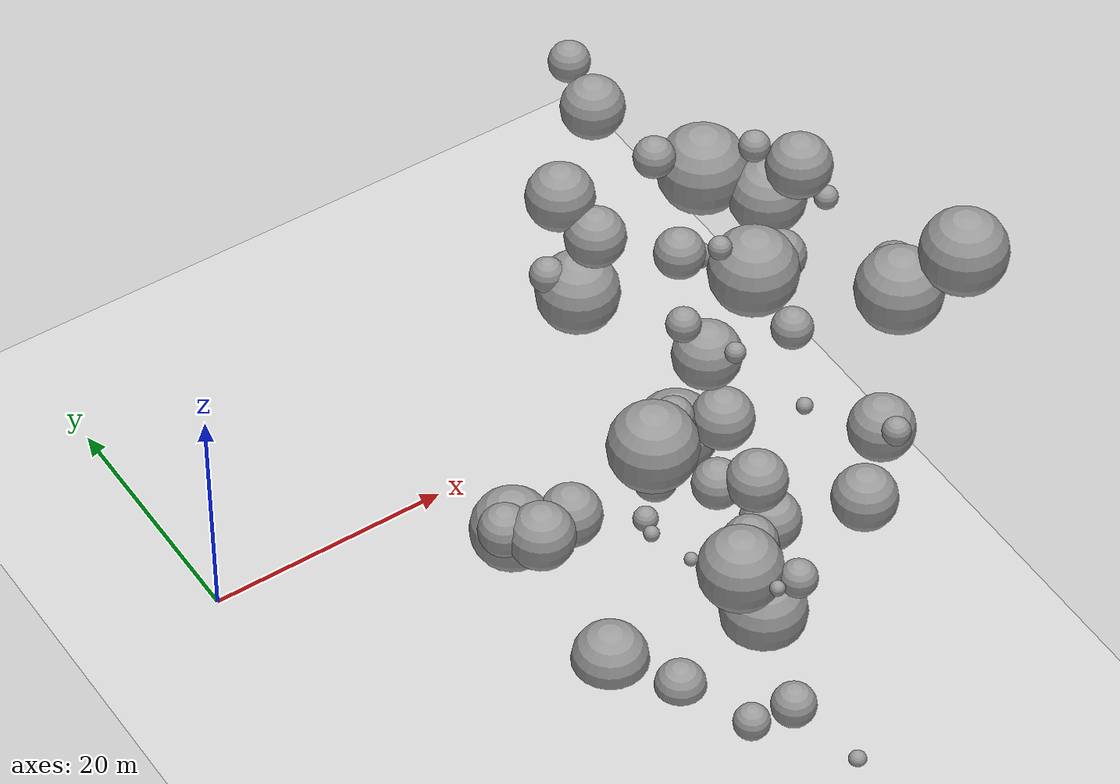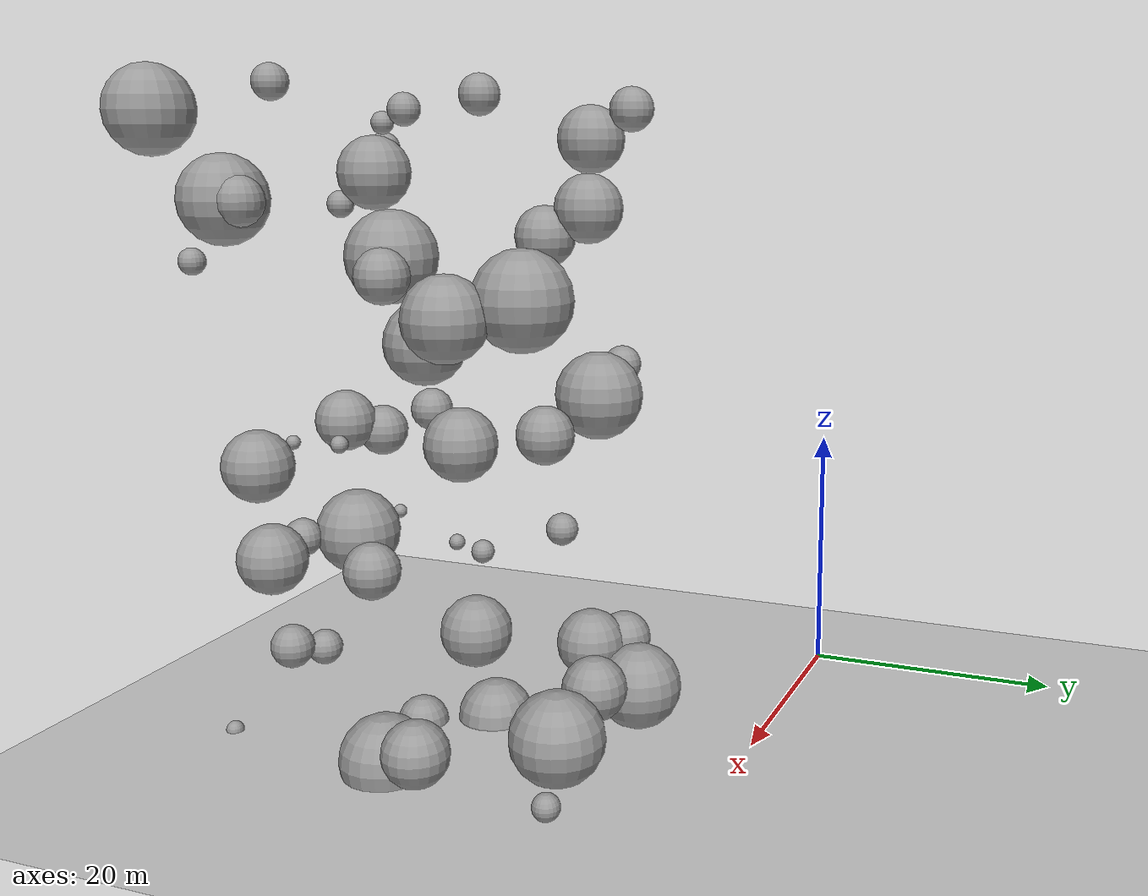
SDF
<sdf version="1.7">
 <world name="default">
  <model name="ground_plane">
   <static>1</static>
   <link name="link">
    <collision name="collision">
     <geometry><plane><normal>0 0 1</normal><size>100 100</size></plane></geometry>
     <surface>
      <contact><collide_bitmask>65535</collide_bitmask></contact>
      <friction><ode><mu>100</mu><mu2>50</mu2></ode></friction>
     </surface>
    </collision>
    <visual name="visual">
     <cast_shadows>0</cast_shadows>
     <geometry><plane><normal>0 0 1</normal><size>100 100</size></plane></geometry>
     <material>
      <script><uri>file://media/materials/scripts/gazebo.material</uri><name>Gazebo/Grey</name></script>
     </material>
    </visual>
   </link>
  </model>
  <model name="sphere_11">
   <static>1</static>
   <pose>39 -30 24 0 0 0</pose>
   <link name="link">
    <inertial>
     <mass>6761.3348610337325</mass>
     <inertia>
      <ixx>17273.81751408212</ixx>
      <iyy>17273.81751408212</iyy>
      <izz>17273.81751408212</izz>
      <ixy>0</ixy>
      <ixz>0</ixz>
      <iyz>0</iyz>
     </inertia>
    </inertial>
    <collision name="collision">
     <geometry><sphere><radius>2.5272484876502723</radius></sphere></geometry>
    </collision>
    <visual name="visual">
     <geometry><sphere><radius>2.5272484876502723</radius></sphere></geometry>
     <material>
      <script><uri>file://media/materials/scripts/gazebo.material</uri><name>Gazebo/Grey</name></script>
     </material>
    </visual>
   </link>
  </model>
  <model name="sphere_26">
   <static>1</static>
   <pose>32 -39 0 0 0 0</pose>
   <link name="link">
    <inertial>
     <mass>146.71801015854183</mass>
     <inertia>
      <ixx>29.161283317194567</ixx>
      <iyy>29.161283317194567</iyy>
      <izz>29.161283317194567</izz>
      <ixy>0</ixy>
      <ixz>0</ixz>
      <iyz>0</iyz>
     </inertia>
    </inertial>
    <collision name="collision">
     <geometry><sphere><radius>0.7049066478409625</radius></sphere></geometry>
    </collision>
    <visual name="visual">
     <geometry><sphere><radius>0.7049066478409625</radius></sphere></geometry>
     <material>
      <script><uri>file://media/materials/scripts/gazebo.material</uri><name>Gazebo/Grey</name></script>
     </material>
    </visual>
   </link>
  </model>
  <model name="sphere_31">
   <static>1</static>
   <pose>24 -28 17 0 0 0</pose>
   <link name="link">
    <inertial>
     <mass>61.999389655790715</mass>
     <inertia>
      <ixx>6.939261845150968</ixx>
      <iyy>6.939261845150968</iyy>
      <izz>6.939261845150968</izz>
      <ixy>0</ixy>
      <ixz>0</ixz>
      <iyz>0</iyz>
     </inertia>
    </inertial>
    <collision name="collision">
     <geometry><sphere><radius>0.5289723054267761</radius></sphere></geometry>
    </collision>
    <visual name="visual">
     <geometry><sphere><radius>0.5289723054267761</radius></sphere></geometry>
     <material>
      <script><uri>file://media/materials/scripts/gazebo.material</uri><name>Gazebo/Grey</name></script>
     </material>
    </visual>
   </link>
  </model>
  <model name="sphere_32">
   <static>1</static>
   <pose>26 -27 47 0 0 0</pose>
   <link name="link">
    <inertial>
     <mass>250.42265479350073</mass>
     <inertia>
      <ixx>71.08701484467682</ixx>
      <iyy>71.08701484467682</iyy>
      <izz>71.08701484467682</izz>
      <ixy>0</ixy>
      <ixz>0</ixz>
      <iyz>0</iyz>
     </inertia>
    </inertial>
    <collision name="collision">
     <geometry><sphere><radius>0.8424193528870205</radius></sphere></geometry>
    </collision>
    <visual name="visual">
     <geometry><sphere><radius>0.8424193528870205</radius></sphere></geometry>
     <material>
      <script><uri>file://media/materials/scripts/gazebo.material</uri><name>Gazebo/Grey</name></script>
     </material>
    </visual>
   </link>
  </model>
  <model name="sphere_34">
   <static>1</static>
   <pose>25 -11 5 0 0 0</pose>
   <link name="link">
    <inertial>
     <mass>6659.506574605881</mass>
     <inertia>
      <ixx>16842.41400105832</ixx>
      <iyy>16842.41400105832</iyy>
      <izz>16842.41400105832</izz>
      <ixy>0</ixy>
      <ixz>0</ixz>
      <iyz>0</iyz>
     </inertia>
    </inertial>
    <collision name="collision">
     <geometry><sphere><radius>2.5144971491569468</radius></sphere></geometry>
    </collision>
    <visual name="visual">
     <geometry><sphere><radius>2.5144971491569468</radius></sphere></geometry>
     <material>
      <script><uri>file://media/materials/scripts/gazebo.material</uri><name>Gazebo/Grey</name></script>
     </material>
    </visual>
   </link>
  </model>
  <model name="sphere_39">
   <static>1</static>
   <pose>31 -17 17 0 0 0</pose>
   <link name="link">
    <inertial>
     <mass>241.15153081747712</mass>
     <inertia>
      <ixx>66.75507533729944</ixx>
      <iyy>66.75507533729944</iyy>
      <izz>66.75507533729944</izz>
      <ixy>0</ixy>
      <ixz>0</ixz>
      <iyz>0</iyz>
     </inertia>
    </inertial>
    <collision name="collision">
     <geometry><sphere><radius>0.8318923641001357</radius></sphere></geometry>
    </collision>
    <visual name="visual">
     <geometry><sphere><radius>0.8318923641001357</radius></sphere></geometry>
     <material>
      <script><uri>file://media/materials/scripts/gazebo.material</uri><name>Gazebo/Grey</name></script>
     </material>
    </visual>
   </link>
  </model>
  <model name="sphere_55">
   <static>1</static>
   <pose>35 -26 25 0 0 0</pose>
   <link name="link">
    <inertial>
     <mass>108.83707617493017</mass>
     <inertia>
      <ixx>17.726746286466057</ixx>
      <iyy>17.726746286466057</iyy>
      <izz>17.726746286466057</izz>
      <ixy>0</ixy>
      <ixz>0</ixz>
      <iyz>0</iyz>
     </inertia>
    </inertial>
    <collision name="collision">
     <geometry><sphere><radius>0.6381107861235934</radius></sphere></geometry>
    </collision>
    <visual name="visual">
     <geometry><sphere><radius>0.6381107861235934</radius></sphere></geometry>
     <material>
      <script><uri>file://media/materials/scripts/gazebo.material</uri><name>Gazebo/Grey</name></script>
     </material>
    </visual>
   </link>
  </model>
  <model name="sphere_62">
   <static>1</static>
   <pose>27 -18 10 0 0 0</pose>
   <link name="link">
    <inertial>
     <mass>398.5527047433838</mass>
     <inertia>
      <ixx>154.22112011091602</ixx>
      <iyy>154.22112011091602</iyy>
      <izz>154.22112011091602</izz>
      <ixy>0</ixy>
      <ixz>0</ixz>
      <iyz>0</iyz>
     </inertia>
    </inertial>
    <collision name="collision">
     <geometry><sphere><radius>0.9835559058532748</radius></sphere></geometry>
    </collision>
    <visual name="visual">
     <geometry><sphere><radius>0.9835559058532748</radius></sphere></geometry>
     <material>
      <script><uri>file://media/materials/scripts/gazebo.material</uri><name>Gazebo/Grey</name></script>
     </material>
    </visual>
   </link>
  </model>
  <model name="sphere_84">
   <static>1</static>
   <pose>27 -7 48 0 0 0</pose>
   <link name="link">
    <inertial>
     <mass>1463.20033098981</mass>
     <inertia>
      <ixx>1347.4331763832636</ixx>
      <iyy>1347.4331763832636</iyy>
      <izz>1347.4331763832636</izz>
      <ixy>0</ixy>
      <ixz>0</ixz>
      <iyz>0</iyz>
     </inertia>
    </inertial>
    <collision name="collision">
     <geometry><sphere><radius>1.5173009409031737</radius></sphere></geometry>
    </collision>
    <visual name="visual">
     <geometry><sphere><radius>1.5173009409031737</radius></sphere></geometry>
     <material>
      <script><uri>file://media/materials/scripts/gazebo.material</uri><name>Gazebo/Grey</name></script>
     </material>
    </visual>
   </link>
  </model>
  <model name="sphere_90">
   <static>1</static>
   <pose>30 -27 14 0 0 0</pose>
   <link name="link">
    <inertial>
     <mass>4404.290433046008</mass>
     <inertia>
      <ixx>8455.270417579984</ixx>
      <iyy>8455.270417579984</iyy>
      <izz>8455.270417579984</izz>
      <ixy>0</ixy>
      <ixz>0</ixz>
      <iyz>0</iyz>
     </inertia>
    </inertial>
    <collision name="collision">
     <geometry><sphere><radius>2.1907649307975245</radius></sphere></geometry>
    </collision>
    <visual name="visual">
     <geometry><sphere><radius>2.1907649307975245</radius></sphere></geometry>
     <material>
      <script><uri>file://media/materials/scripts/gazebo.material</uri><name>Gazebo/Grey</name></script>
     </material>
    </visual>
   </link>
  </model>
  <model name="sphere_95">
   <static>1</static>
   <pose>24 -9 30 0 0 0</pose>
   <link name="link">
    <inertial>
     <mass>1047.7535553067346</mass>
     <inertia>
      <ixx>772.2646524986837</ixx>
      <iyy>772.2646524986837</iyy>
      <izz>772.2646524986837</izz>
      <ixy>0</ixy>
      <ixz>0</ixz>
      <iyz>0</iyz>
     </inertia>
    </inertial>
    <collision name="collision">
     <geometry><sphere><radius>1.3574489667920646</radius></sphere></geometry>
    </collision>
    <visual name="visual">
     <geometry><sphere><radius>1.3574489667920646</radius></sphere></geometry>
     <material>
      <script><uri>file://media/materials/scripts/gazebo.material</uri><name>Gazebo/Grey</name></script>
     </material>
    </visual>
   </link>
  </model>
  <model name="sphere_115">
   <static>1</static>
   <pose>27 -28 37 0 0 0</pose>
   <link name="link">
    <inertial>
     <mass>186.24926215727473</mass>
     <inertia>
      <ixx>43.40021223925867</ixx>
      <iyy>43.40021223925867</iyy>
      <izz>43.40021223925867</izz>
      <ixy>0</ixy>
      <ixz>0</ixz>
      <iyz>0</iyz>
     </inertia>
    </inertial>
    <collision name="collision">
     <geometry><sphere><radius>0.7632532294428365</radius></sphere></geometry>
    </collision>
    <visual name="visual">
     <geometry><sphere><radius>0.7632532294428365</radius></sphere></geometry>
     <material>
      <script><uri>file://media/materials/scripts/gazebo.material</uri><name>Gazebo/Grey</name></script>
     </material>
    </visual>
   </link>
  </model>
  <model name="sphere_116">
   <static>1</static>
   <pose>26 -19 49 0 0 0</pose>
   <link name="link">
    <inertial>
     <mass>1409.2473442350106</mass>
     <inertia>
      <ixx>1265.6480671098475</ixx>
      <iyy>1265.6480671098475</iyy>
      <izz>1265.6480671098475</izz>
      <ixy>0</ixy>
      <ixz>0</ixz>
      <iyz>0</iyz>
     </inertia>
    </inertial>
    <collision name="collision">
     <geometry><sphere><radius>1.4984176221385823</radius></sphere></geometry>
    </collision>
    <visual name="visual">
     <geometry><sphere><radius>1.4984176221385823</radius></sphere></geometry>
     <material>
      <script><uri>file://media/materials/scripts/gazebo.material</uri><name>Gazebo/Grey</name></script>
     </material>
    </visual>
   </link>
  </model>
  <model name="sphere_130">
   <static>1</static>
   <pose>35 -22 37 0 0 0</pose>
   <link name="link">
    <inertial>
     <mass>3119.8012370663896</mass>
     <inertia>
      <ixx>4759.329740267785</ixx>
      <iyy>4759.329740267785</iyy>
      <izz>4759.329740267785</izz>
      <ixy>0</ixy>
      <ixz>0</ixz>
      <iyz>0</iyz>
     </inertia>
    </inertial>
    <collision name="collision">
     <geometry><sphere><radius>1.9528974524414466</radius></sphere></geometry>
    </collision>
    <visual name="visual">
     <geometry><sphere><radius>1.9528974524414466</radius></sphere></geometry>
     <material>
      <script><uri>file://media/materials/scripts/gazebo.material</uri><name>Gazebo/Grey</name></script>
     </material>
    </visual>
   </link>
  </model>
  <model name="sphere_134">
   <static>1</static>
   <pose>28 -30 25 0 0 0</pose>
   <link name="link">
    <inertial>
     <mass>5046.941384951092</mass>
     <inertia>
      <ixx>10609.982964387482</ixx>
      <iyy>10609.982964387482</iyy>
      <izz>10609.982964387482</izz>
      <ixy>0</ixy>
      <ixz>0</ixz>
      <iyz>0</iyz>
     </inertia>
    </inertial>
    <collision name="collision">
     <geometry><sphere><radius>2.292520443611523</radius></sphere></geometry>
    </collision>
    <visual name="visual">
     <geometry><sphere><radius>2.292520443611523</radius></sphere></geometry>
     <material>
      <script><uri>file://media/materials/scripts/gazebo.material</uri><name>Gazebo/Grey</name></script>
     </material>
    </visual>
   </link>
  </model>
  <model name="sphere_142">
   <static>1</static>
   <pose>24 -38 50 0 0 0</pose>
   <link name="link">
    <inertial>
     <mass>1265.0079728478186</mass>
     <inertia>
      <ixx>1057.198057061959</ixx>
      <iyy>1057.198057061959</iyy>
      <izz>1057.198057061959</izz>
      <ixy>0</ixy>
      <ixz>0</ixz>
      <iyz>0</iyz>
     </inertia>
    </inertial>
    <collision name="collision">
     <geometry><sphere><radius>1.4454449333176282</radius></sphere></geometry>
    </collision>
    <visual name="visual">
     <geometry><sphere><radius>1.4454449333176282</radius></sphere></geometry>
     <material>
      <script><uri>file://media/materials/scripts/gazebo.material</uri><name>Gazebo/Grey</name></script>
     </material>
    </visual>
   </link>
  </model>
  <model name="sphere_148">
   <static>1</static>
   <pose>32 -40 37 0 0 0</pose>
   <link name="link">
    <inertial>
     <mass>453.9548413436064</mass>
     <inertia>
      <ixx>191.58228054192844</ixx>
      <iyy>191.58228054192844</iyy>
      <izz>191.58228054192844</izz>
      <ixy>0</ixy>
      <ixz>0</ixz>
      <iyz>0</iyz>
     </inertia>
    </inertial>
    <collision name="collision">
     <geometry><sphere><radius>1.027167684295725</radius></sphere></geometry>
    </collision>
    <visual name="visual">
     <geometry><sphere><radius>1.027167684295725</radius></sphere></geometry>
     <material>
      <script><uri>file://media/materials/scripts/gazebo.material</uri><name>Gazebo/Grey</name></script>
     </material>
    </visual>
   </link>
  </model>
  <model name="sphere_151">
   <static>1</static>
   <pose>34 -24 1 0 0 0</pose>
   <link name="link">
    <inertial>
     <mass>17253.044339041888</mass>
     <inertia>
      <ixx>82308.33487054077</ixx>
      <iyy>82308.33487054077</iyy>
      <izz>82308.33487054077</izz>
      <ixy>0</ixy>
      <ixz>0</ixz>
      <iyz>0</iyz>
     </inertia>
    </inertial>
    <collision name="collision">
     <geometry><sphere><radius>3.4534966816265884</radius></sphere></geometry>
    </collision>
    <visual name="visual">
     <geometry><sphere><radius>3.4534966816265884</radius></sphere></geometry>
     <material>
      <script><uri>file://media/materials/scripts/gazebo.material</uri><name>Gazebo/Grey</name></script>
     </material>
    </visual>
   </link>
  </model>
  <model name="sphere_160">
   <static>1</static>
   <pose>37 -33 42 0 0 0</pose>
   <link name="link">
    <inertial>
     <mass>13401.412699569923</mass>
     <inertia>
      <ixx>54023.81146828969</ixx>
      <iyy>54023.81146828969</iyy>
      <izz>54023.81146828969</izz>
      <ixy>0</ixy>
      <ixz>0</ixz>
      <iyz>0</iyz>
     </inertia>
    </inertial>
    <collision name="collision">
     <geometry><sphere><radius>3.174587662434086</radius></sphere></geometry>
    </collision>
    <visual name="visual">
     <geometry><sphere><radius>3.174587662434086</radius></sphere></geometry>
     <material>
      <script><uri>file://media/materials/scripts/gazebo.material</uri><name>Gazebo/Grey</name></script>
     </material>
    </visual>
   </link>
  </model>
  <model name="sphere_164">
   <static>1</static>
   <pose>38 -23 42 0 0 0</pose>
   <link name="link">
    <inertial>
     <mass>289.290651609578</mass>
     <inertia>
      <ixx>90.41175884455117</ixx>
      <iyy>90.41175884455117</iyy>
      <izz>90.41175884455117</izz>
      <ixy>0</ixy>
      <ixz>0</ixz>
      <iyz>0</iyz>
     </inertia>
    </inertial>
    <collision name="collision">
     <geometry><sphere><radius>0.8839246871085491</radius></sphere></geometry>
    </collision>
    <visual name="visual">
     <geometry><sphere><radius>0.8839246871085491</radius></sphere></geometry>
     <material>
      <script><uri>file://media/materials/scripts/gazebo.material</uri><name>Gazebo/Grey</name></script>
     </material>
    </visual>
   </link>
  </model>
  <model name="sphere_190">
   <static>1</static>
   <pose>35 -10 27 0 0 0</pose>
   <link name="link">
    <inertial>
     <mass>3206.8805438925365</mass>
     <inertia>
      <ixx>4982.785857170013</ixx>
      <iyy>4982.785857170013</iyy>
      <izz>4982.785857170013</izz>
      <ixy>0</ixy>
      <ixz>0</ixz>
      <iyz>0</iyz>
     </inertia>
    </inertial>
    <collision name="collision">
     <geometry><sphere><radius>1.9709006126273123</radius></sphere></geometry>
    </collision>
    <visual name="visual">
     <geometry><sphere><radius>1.9709006126273123</radius></sphere></geometry>
     <material>
      <script><uri>file://media/materials/scripts/gazebo.material</uri><name>Gazebo/Grey</name></script>
     </material>
    </visual>
   </link>
  </model>
  <model name="sphere_195">
   <static>1</static>
   <pose>19 -11 7 0 0 0</pose>
   <link name="link">
    <inertial>
     <mass>3888.7907405169285</mass>
     <inertia>
      <ixx>6871.083217534892</ixx>
      <iyy>6871.083217534892</iyy>
      <izz>6871.083217534892</izz>
      <ixy>0</ixy>
      <ixz>0</ixz>
      <iyz>0</iyz>
     </inertia>
    </inertial>
    <collision name="collision">
     <geometry><sphere><radius>2.1017222481682802</radius></sphere></geometry>
    </collision>
    <visual name="visual">
     <geometry><sphere><radius>2.1017222481682802</radius></sphere></geometry>
     <material>
      <script><uri>file://media/materials/scripts/gazebo.material</uri><name>Gazebo/Grey</name></script>
     </material>
    </visual>
   </link>
  </model>
  <model name="sphere_197">
   <static>1</static>
   <pose>32 -18 25 0 0 0</pose>
   <link name="link">
    <inertial>
     <mass>7782.7330776203835</mass>
     <inertia>
      <ixx>21838.416513668493</ixx>
      <iyy>21838.416513668493</iyy>
      <izz>21838.416513668493</izz>
      <ixy>0</ixy>
      <ixz>0</ixz>
      <iyz>0</iyz>
     </inertia>
    </inertial>
    <collision name="collision">
     <geometry><sphere><radius>2.648588620742899</radius></sphere></geometry>
    </collision>
    <visual name="visual">
     <geometry><sphere><radius>2.648588620742899</radius></sphere></geometry>
     <material>
      <script><uri>file://media/materials/scripts/gazebo.material</uri><name>Gazebo/Grey</name></script>
     </material>
    </visual>
   </link>
  </model>
  <model name="sphere_202">
   <static>1</static>
   <pose>30 -33 16 0 0 0</pose>
   <link name="link">
    <inertial>
     <mass>1313.7115293238603</mass>
     <inertia>
      <ixx>1125.9028990725226</ixx>
      <iyy>1125.9028990725226</iyy>
      <izz>1125.9028990725226</izz>
      <ixy>0</ixy>
      <ixz>0</ixz>
      <iyz>0</iyz>
     </inertia>
    </inertial>
    <collision name="collision">
     <geometry><sphere><radius>1.4637619962518453</radius></sphere></geometry>
    </collision>
    <visual name="visual">
     <geometry><sphere><radius>1.4637619962518453</radius></sphere></geometry>
     <material>
      <script><uri>file://media/materials/scripts/gazebo.material</uri><name>Gazebo/Grey</name></script>
     </material>
    </visual>
   </link>
  </model>
  <model name="sphere_204">
   <static>1</static>
   <pose>21 -27 30 0 0 0</pose>
   <link name="link">
    <inertial>
     <mass>15685.803136621387</mass>
     <inertia>
      <ixx>70228.3047972252</ixx>
      <iyy>70228.3047972252</iyy>
      <izz>70228.3047972252</izz>
      <ixy>0</ixy>
      <ixz>0</ixz>
      <iyz>0</iyz>
     </inertia>
    </inertial>
    <collision name="collision">
     <geometry><sphere><radius>3.3455899967466456</radius></sphere></geometry>
    </collision>
    <visual name="visual">
     <geometry><sphere><radius>3.3455899967466456</radius></sphere></geometry>
     <material>
      <script><uri>file://media/materials/scripts/gazebo.material</uri><name>Gazebo/Grey</name></script>
     </material>
    </visual>
   </link>
  </model>
  <model name="sphere_229">
   <static>1</static>
   <pose>40 -8 3 0 0 0</pose>
   <link name="link">
    <inertial>
     <mass>408.589915446076</mass>
     <inertia>
      <ixx>160.74852288023288</ixx>
      <iyy>160.74852288023288</iyy>
      <izz>160.74852288023288</izz>
      <ixy>0</ixy>
      <ixz>0</ixz>
      <iyz>0</iyz>
     </inertia>
    </inertial>
    <collision name="collision">
     <geometry><sphere><radius>0.9917442200330667</radius></sphere></geometry>
    </collision>
    <visual name="visual">
     <geometry><sphere><radius>0.9917442200330667</radius></sphere></geometry>
     <material>
      <script><uri>file://media/materials/scripts/gazebo.material</uri><name>Gazebo/Grey</name></script>
     </material>
    </visual>
   </link>
  </model>
  <model name="sphere_233">
   <static>1</static>
   <pose>27 -30 16 0 0 0</pose>
   <link name="link">
    <inertial>
     <mass>14441.756045429736</mass>
     <inertia>
      <ixx>61192.88457816278</ixx>
      <iyy>61192.88457816278</iyy>
      <izz>61192.88457816278</izz>
      <ixy>0</ixy>
      <ixz>0</ixz>
      <iyz>0</iyz>
     </inertia>
    </inertial>
    <collision name="collision">
     <geometry><sphere><radius>3.254696261452851</radius></sphere></geometry>
    </collision>
    <visual name="visual">
     <geometry><sphere><radius>3.254696261452851</radius></sphere></geometry>
     <material>
      <script><uri>file://media/materials/scripts/gazebo.material</uri><name>Gazebo/Grey</name></script>
     </material>
    </visual>
   </link>
  </model>
  <model name="sphere_234">
   <static>1</static>
   <pose>39 -15 35 0 0 0</pose>
   <link name="link">
    <inertial>
     <mass>10370.68739788526</mass>
     <inertia>
      <ixx>35238.18174043056</ixx>
      <iyy>35238.18174043056</iyy>
      <izz>35238.18174043056</izz>
      <ixy>0</ixy>
      <ixz>0</ixz>
      <iyz>0</iyz>
     </inertia>
    </inertial>
    <collision name="collision">
     <geometry><sphere><radius>2.9145598512228843</radius></sphere></geometry>
    </collision>
    <visual name="visual">
     <geometry><sphere><radius>2.9145598512228843</radius></sphere></geometry>
     <material>
      <script><uri>file://media/materials/scripts/gazebo.material</uri><name>Gazebo/Grey</name></script>
     </material>
    </visual>
   </link>
  </model>
  <model name="sphere_240">
   <static>1</static>
   <pose>38 -31 42 0 0 0</pose>
   <link name="link">
    <inertial>
     <mass>2361.2288756116354</mass>
     <inertia>
      <ixx>2991.5600697432114</ixx>
      <iyy>2991.5600697432114</iyy>
      <izz>2991.5600697432114</izz>
      <ixy>0</ixy>
      <ixz>0</ixz>
      <iyz>0</iyz>
     </inertia>
    </inertial>
    <collision name="collision">
     <geometry><sphere><radius>1.7797123961825352</radius></sphere></geometry>
    </collision>
    <visual name="visual">
     <geometry><sphere><radius>1.7797123961825352</radius></sphere></geometry>
     <material>
      <script><uri>file://media/materials/scripts/gazebo.material</uri><name>Gazebo/Grey</name></script>
     </material>
    </visual>
   </link>
  </model>
  <model name="sphere_244">
   <static>1</static>
   <pose>37 -21 44 0 0 0</pose>
   <link name="link">
    <inertial>
     <mass>5876.329533599307</mass>
     <inertia>
      <ixx>13672.391600934301</ixx>
      <iyy>13672.391600934301</iyy>
      <izz>13672.391600934301</izz>
      <ixy>0</ixy>
      <ixz>0</ixz>
      <iyz>0</iyz>
     </inertia>
    </inertial>
    <collision name="collision">
     <geometry><sphere><radius>2.4117882647319844</radius></sphere></geometry>
    </collision>
    <visual name="visual">
     <geometry><sphere><radius>2.4117882647319844</radius></sphere></geometry>
     <material>
      <script><uri>file://media/materials/scripts/gazebo.material</uri><name>Gazebo/Grey</name></script>
     </material>
    </visual>
   </link>
  </model>
  <model name="sphere_252">
   <static>1</static>
   <pose>36 -15 13 0 0 0</pose>
   <link name="link">
    <inertial>
     <mass>6308.094515099812</mass>
     <inertia>
      <ixx>15387.376187675918</ixx>
      <iyy>15387.376187675918</iyy>
      <izz>15387.376187675918</izz>
      <ixy>0</ixy>
      <ixz>0</ixz>
      <iyz>0</iyz>
     </inertia>
    </inertial>
    <collision name="collision">
     <geometry><sphere><radius>2.469466813481816</radius></sphere></geometry>
    </collision>
    <visual name="visual">
     <geometry><sphere><radius>2.469466813481816</radius></sphere></geometry>
     <material>
      <script><uri>file://media/materials/scripts/gazebo.material</uri><name>Gazebo/Grey</name></script>
     </material>
    </visual>
   </link>
  </model>
  <model name="sphere_274">
   <static>1</static>
   <pose>25 -26 0 0 0 0</pose>
   <link name="link">
    <inertial>
     <mass>3458.3524818181095</mass>
     <inertia>
      <ixx>5650.883371237501</ixx>
      <iyy>5650.883371237501</iyy>
      <izz>5650.883371237501</izz>
      <ixy>0</ixy>
      <ixz>0</ixz>
      <iyz>0</iyz>
     </inertia>
    </inertial>
    <collision name="collision">
     <geometry><sphere><radius>2.0211267434258207</radius></sphere></geometry>
    </collision>
    <visual name="visual">
     <geometry><sphere><radius>2.0211267434258207</radius></sphere></geometry>
     <material>
      <script><uri>file://media/materials/scripts/gazebo.material</uri><name>Gazebo/Grey</name></script>
     </material>
    </visual>
   </link>
  </model>
  <model name="sphere_275">
   <static>1</static>
   <pose>21 -13 7 0 0 0</pose>
   <link name="link">
    <inertial>
     <mass>8090.241358483655</mass>
     <inertia>
      <ixx>23295.39339346996</ixx>
      <iyy>23295.39339346996</iyy>
      <izz>23295.39339346996</izz>
      <ixy>0</ixy>
      <ixz>0</ixz>
      <iyz>0</iyz>
     </inertia>
    </inertial>
    <collision name="collision">
     <geometry><sphere><radius>2.6830223451578306</radius></sphere></geometry>
    </collision>
    <visual name="visual">
     <geometry><sphere><radius>2.6830223451578306</radius></sphere></geometry>
     <material>
      <script><uri>file://media/materials/scripts/gazebo.material</uri><name>Gazebo/Grey</name></script>
     </material>
    </visual>
   </link>
  </model>
  <model name="sphere_284">
   <static>1</static>
   <pose>23 -12 41 0 0 0</pose>
   <link name="link">
    <inertial>
     <mass>6759.288646412369</mass>
     <inertia>
      <ixx>17265.105631755465</ixx>
      <iyy>17265.105631755465</iyy>
      <izz>17265.105631755465</izz>
      <ixy>0</ixy>
      <ixz>0</ixz>
      <iyz>0</iyz>
     </inertia>
    </inertial>
    <collision name="collision">
     <geometry><sphere><radius>2.5269935175557485</radius></sphere></geometry>
    </collision>
    <visual name="visual">
     <geometry><sphere><radius>2.5269935175557485</radius></sphere></geometry>
     <material>
      <script><uri>file://media/materials/scripts/gazebo.material</uri><name>Gazebo/Grey</name></script>
     </material>
    </visual>
   </link>
  </model>
  <model name="sphere_295">
   <static>1</static>
   <pose>27 -21 24 0 0 0</pose>
   <link name="link">
    <inertial>
     <mass>1618.573437703466</mass>
     <inertia>
      <ixx>1594.2445219222777</ixx>
      <iyy>1594.2445219222777</iyy>
      <izz>1594.2445219222777</izz>
      <ixy>0</ixy>
      <ixz>0</ixz>
      <iyz>0</iyz>
     </inertia>
    </inertial>
    <collision name="collision">
     <geometry><sphere><radius>1.569210720767344</radius></sphere></geometry>
    </collision>
    <visual name="visual">
     <geometry><sphere><radius>1.569210720767344</radius></sphere></geometry>
     <material>
      <script><uri>file://media/materials/scripts/gazebo.material</uri><name>Gazebo/Grey</name></script>
     </material>
    </visual>
   </link>
  </model>
  <model name="sphere_301">
   <static>1</static>
   <pose>26 -28 24 0 0 0</pose>
   <link name="link">
    <inertial>
     <mass>2834.513314697778</mass>
     <inertia>
      <ixx>4056.3157524304033</ixx>
      <iyy>4056.3157524304033</iyy>
      <izz>4056.3157524304033</izz>
      <ixy>0</ixy>
      <ixz>0</ixz>
      <iyz>0</iyz>
     </inertia>
    </inertial>
    <collision name="collision">
     <geometry><sphere><radius>1.8914576886031473</radius></sphere></geometry>
    </collision>
    <visual name="visual">
     <geometry><sphere><radius>1.8914576886031473</radius></sphere></geometry>
     <material>
      <script><uri>file://media/materials/scripts/gazebo.material</uri><name>Gazebo/Grey</name></script>
     </material>
    </visual>
   </link>
  </model>
  <model name="sphere_311">
   <static>1</static>
   <pose>39 -7 22 0 0 0</pose>
   <link name="link">
    <inertial>
     <mass>455.3287007012675</mass>
     <inertia>
      <ixx>192.54960343045315</ixx>
      <iyy>192.54960343045315</iyy>
      <izz>192.54960343045315</izz>
      <ixy>0</ixy>
      <ixz>0</ixz>
      <iyz>0</iyz>
     </inertia>
    </inertial>
    <collision name="collision">
     <geometry><sphere><radius>1.0282028553319709</radius></sphere></geometry>
    </collision>
    <visual name="visual">
     <geometry><sphere><radius>1.0282028553319709</radius></sphere></geometry>
     <material>
      <script><uri>file://media/materials/scripts/gazebo.material</uri><name>Gazebo/Grey</name></script>
     </material>
    </visual>
   </link>
  </model>
  <model name="sphere_338">
   <static>1</static>
   <pose>22 -26 25 0 0 0</pose>
   <link name="link">
    <inertial>
     <mass>1826.4395684195058</mass>
     <inertia>
      <ixx>1949.8884369064226</ixx>
      <iyy>1949.8884369064226</iyy>
      <izz>1949.8884369064226</izz>
      <ixy>0</ixy>
      <ixz>0</ixz>
      <iyz>0</iyz>
     </inertia>
    </inertial>
    <collision name="collision">
     <geometry><sphere><radius>1.6336997126032873</radius></sphere></geometry>
    </collision>
    <visual name="visual">
     <geometry><sphere><radius>1.6336997126032873</radius></sphere></geometry>
     <material>
      <script><uri>file://media/materials/scripts/gazebo.material</uri><name>Gazebo/Grey</name></script>
     </material>
    </visual>
   </link>
  </model>
  <model name="sphere_342">
   <static>1</static>
   <pose>36 -9 6 0 0 0</pose>
   <link name="link">
    <inertial>
     <mass>16331.991307338381</mass>
     <inertia>
      <ixx>75116.06319199297</ixx>
      <iyy>75116.06319199297</iyy>
      <izz>75116.06319199297</izz>
      <ixy>0</ixy>
      <ixz>0</ixz>
      <iyz>0</iyz>
     </inertia>
    </inertial>
    <collision name="collision">
     <geometry><sphere><radius>3.390914532586306</radius></sphere></geometry>
    </collision>
    <visual name="visual">
     <geometry><sphere><radius>3.390914532586306</radius></sphere></geometry>
     <material>
      <script><uri>file://media/materials/scripts/gazebo.material</uri><name>Gazebo/Grey</name></script>
     </material>
    </visual>
   </link>
  </model>
  <model name="sphere_343">
   <static>1</static>
   <pose>36 -11 36 0 0 0</pose>
   <link name="link">
    <inertial>
     <mass>16565.772892292676</mass>
     <inertia>
      <ixx>76916.66112090248</ixx>
      <iyy>76916.66112090248</iyy>
      <izz>76916.66112090248</izz>
      <ixy>0</ixy>
      <ixz>0</ixz>
      <iyz>0</iyz>
     </inertia>
    </inertial>
    <collision name="collision">
     <geometry><sphere><radius>3.407017502340067</radius></sphere></geometry>
    </collision>
    <visual name="visual">
     <geometry><sphere><radius>3.407017502340067</radius></sphere></geometry>
     <material>
      <script><uri>file://media/materials/scripts/gazebo.material</uri><name>Gazebo/Grey</name></script>
     </material>
    </visual>
   </link>
  </model>
  <model name="sphere_358">
   <static>1</static>
   <pose>24 -23 15 0 0 0</pose>
   <link name="link">
    <inertial>
     <mass>100.13099774320895</mass>
     <inertia>
      <ixx>15.427012256505698</ixx>
      <iyy>15.427012256505698</iyy>
      <izz>15.427012256505698</izz>
      <ixy>0</ixy>
      <ixz>0</ixz>
      <iyz>0</iyz>
     </inertia>
    </inertial>
    <collision name="collision">
     <geometry><sphere><radius>0.6206212544167843</radius></sphere></geometry>
    </collision>
    <visual name="visual">
     <geometry><sphere><radius>0.6206212544167843</radius></sphere></geometry>
     <material>
      <script><uri>file://media/materials/scripts/gazebo.material</uri><name>Gazebo/Grey</name></script>
     </material>
    </visual>
   </link>
  </model>
  <model name="sphere_365">
   <static>1</static>
   <pose>21 -9 4 0 0 0</pose>
   <link name="link">
    <inertial>
     <mass>15795.288892960327</mass>
     <inertia>
      <ixx>71047.1848494586</ixx>
      <iyy>71047.1848494586</iyy>
      <izz>71047.1848494586</izz>
      <ixy>0</ixy>
      <ixz>0</ixz>
      <iyz>0</iyz>
     </inertia>
    </inertial>
    <collision name="collision">
     <geometry><sphere><radius>3.3533559470843954</radius></sphere></geometry>
    </collision>
    <visual name="visual">
     <geometry><sphere><radius>3.3533559470843954</radius></sphere></geometry>
     <material>
      <script><uri>file://media/materials/scripts/gazebo.material</uri><name>Gazebo/Grey</name></script>
     </material>
    </visual>
   </link>
  </model>
  <model name="sphere_372">
   <static>1</static>
   <pose>26 -10 28 0 0 0</pose>
   <link name="link">
    <inertial>
     <mass>13204.206480886853</mass>
     <inertia>
      <ixx>52705.357494813805</ixx>
      <iyy>52705.357494813805</iyy>
      <izz>52705.357494813805</izz>
      <ixy>0</ixy>
      <ixz>0</ixz>
      <iyz>0</iyz>
     </inertia>
    </inertial>
    <collision name="collision">
     <geometry><sphere><radius>3.1589389485496513</radius></sphere></geometry>
    </collision>
    <visual name="visual">
     <geometry><sphere><radius>3.1589389485496513</radius></sphere></geometry>
     <material>
      <script><uri>file://media/materials/scripts/gazebo.material</uri><name>Gazebo/Grey</name></script>
     </material>
    </visual>
   </link>
  </model>
  <model name="sphere_374">
   <static>1</static>
   <pose>24 -15 39 0 0 0</pose>
   <link name="link">
    <inertial>
     <mass>4746.354242280919</mass>
     <inertia>
      <ixx>9577.845619938811</ixx>
      <iyy>9577.845619938811</iyy>
      <izz>9577.845619938811</izz>
      <ixy>0</ixy>
      <ixz>0</ixz>
      <iyz>0</iyz>
     </inertia>
    </inertial>
    <collision name="collision">
     <geometry><sphere><radius>2.24607289223001</radius></sphere></geometry>
    </collision>
    <visual name="visual">
     <geometry><sphere><radius>2.24607289223001</radius></sphere></geometry>
     <material>
      <script><uri>file://media/materials/scripts/gazebo.material</uri><name>Gazebo/Grey</name></script>
     </material>
    </visual>
   </link>
  </model>
  <model name="sphere_388">
   <static>1</static>
   <pose>33 -21 48 0 0 0</pose>
   <link name="link">
    <inertial>
     <mass>599.2092784046456</mass>
     <inertia>
      <ixx>304.2975583852644</ixx>
      <iyy>304.2975583852644</iyy>
      <izz>304.2975583852644</izz>
      <ixy>0</ixy>
      <ixz>0</ixz>
      <iyz>0</iyz>
     </inertia>
    </inertial>
    <collision name="collision">
     <geometry><sphere><radius>1.1267562439707584</radius></sphere></geometry>
    </collision>
    <visual name="visual">
     <geometry><sphere><radius>1.1267562439707584</radius></sphere></geometry>
     <material>
      <script><uri>file://media/materials/scripts/gazebo.material</uri><name>Gazebo/Grey</name></script>
     </material>
    </visual>
   </link>
  </model>
  <model name="sphere_391">
   <static>1</static>
   <pose>39 -37 48 0 0 0</pose>
   <link name="link">
    <inertial>
     <mass>12674.975306371178</mass>
     <inertia>
      <ixx>49231.84613915491</ixx>
      <iyy>49231.84613915491</iyy>
      <izz>49231.84613915491</izz>
      <ixy>0</ixy>
      <ixz>0</ixz>
      <iyz>0</iyz>
     </inertia>
    </inertial>
    <collision name="collision">
     <geometry><sphere><radius>3.116158246886779</radius></sphere></geometry>
    </collision>
    <visual name="visual">
     <geometry><sphere><radius>3.116158246886779</radius></sphere></geometry>
     <material>
      <script><uri>file://media/materials/scripts/gazebo.material</uri><name>Gazebo/Grey</name></script>
     </material>
    </visual>
   </link>
  </model>
  <model name="sphere_417">
   <static>1</static>
   <pose>21 -30 45 0 0 0</pose>
   <link name="link">
    <inertial>
     <mass>785.9475111480267</mass>
     <inertia>
      <ixx>478.2520314963584</ixx>
      <iyy>478.2520314963584</iyy>
      <izz>478.2520314963584</izz>
      <ixy>0</ixy>
      <ixz>0</ixz>
      <iyz>0</iyz>
     </inertia>
    </inertial>
    <collision name="collision">
     <geometry><sphere><radius>1.233393469359337</radius></sphere></geometry>
    </collision>
    <visual name="visual">
     <geometry><sphere><radius>1.233393469359337</radius></sphere></geometry>
     <material>
      <script><uri>file://media/materials/scripts/gazebo.material</uri><name>Gazebo/Grey</name></script>
     </material>
    </visual>
   </link>
  </model>
  <model name="sphere_418">
   <static>1</static>
   <pose>25 -37 22 0 0 0</pose>
   <link name="link">
    <inertial>
     <mass>81.73679624674426</mass>
     <inertia>
      <ixx>10.999263435549677</ixx>
      <iyy>10.999263435549677</iyy>
      <izz>10.999263435549677</izz>
      <ixy>0</ixy>
      <ixz>0</ixz>
      <iyz>0</iyz>
     </inertia>
    </inertial>
    <collision name="collision">
     <geometry><sphere><radius>0.5800200422399082</radius></sphere></geometry>
    </collision>
    <visual name="visual">
     <geometry><sphere><radius>0.5800200422399082</radius></sphere></geometry>
     <material>
      <script><uri>file://media/materials/scripts/gazebo.material</uri><name>Gazebo/Grey</name></script>
     </material>
    </visual>
   </link>
  </model>
  <model name="sphere_419">
   <static>1</static>
   <pose>38 -19 4 0 0 0</pose>
   <link name="link">
    <inertial>
     <mass>6308.407875411113</mass>
     <inertia>
      <ixx>15388.650178530741</ixx>
      <iyy>15388.650178530741</iyy>
      <izz>15388.650178530741</izz>
      <ixy>0</ixy>
      <ixz>0</ixz>
      <iyz>0</iyz>
     </inertia>
    </inertial>
    <collision name="collision">
     <geometry><sphere><radius>2.469507703805315</radius></sphere></geometry>
    </collision>
    <visual name="visual">
     <geometry><sphere><radius>2.469507703805315</radius></sphere></geometry>
     <material>
      <script><uri>file://media/materials/scripts/gazebo.material</uri><name>Gazebo/Grey</name></script>
     </material>
    </visual>
   </link>
  </model>
  <model name="sphere_450">
   <static>1</static>
   <pose>25 -35 5 0 0 0</pose>
   <link name="link">
    <inertial>
     <mass>1217.3002133790358</mass>
     <inertia>
      <ixx>991.5860660809807</ixx>
      <iyy>991.5860660809807</iyy>
      <izz>991.5860660809807</izz>
      <ixy>0</ixy>
      <ixz>0</ixz>
      <iyz>0</iyz>
     </inertia>
    </inertial>
    <collision name="collision">
     <geometry><sphere><radius>1.427040710955199</radius></sphere></geometry>
    </collision>
    <visual name="visual">
     <geometry><sphere><radius>1.427040710955199</radius></sphere></geometry>
     <material>
      <script><uri>file://media/materials/scripts/gazebo.material</uri><name>Gazebo/Grey</name></script>
     </material>
    </visual>
   </link>
  </model>
  <model name="sphere_451">
   <static>1</static>
   <pose>27 -10 46 0 0 0</pose>
   <link name="link">
    <inertial>
     <mass>5308.439858972431</mass>
     <inertia>
      <ixx>11541.947314592786</ixx>
      <iyy>11541.947314592786</iyy>
      <izz>11541.947314592786</izz>
      <ixy>0</ixy>
      <ixz>0</ixz>
      <iyz>0</iyz>
     </inertia>
    </inertial>
    <collision name="collision">
     <geometry><sphere><radius>2.331449953418648</radius></sphere></geometry>
    </collision>
    <visual name="visual">
     <geometry><sphere><radius>2.331449953418648</radius></sphere></geometry>
     <material>
      <script><uri>file://media/materials/scripts/gazebo.material</uri><name>Gazebo/Grey</name></script>
     </material>
    </visual>
   </link>
  </model>
  <model name="sphere_462">
   <static>1</static>
   <pose>22 -21 0 0 0 0</pose>
   <link name="link">
    <inertial>
     <mass>11623.553516886357</mass>
     <inertia>
      <ixx>42615.322983483195</ixx>
      <iyy>42615.322983483195</iyy>
      <izz>42615.322983483195</izz>
      <ixy>0</ixy>
      <ixz>0</ixz>
      <iyz>0</iyz>
     </inertia>
    </inertial>
    <collision name="collision">
     <geometry><sphere><radius>3.0274950151588795</radius></sphere></geometry>
    </collision>
    <visual name="visual">
     <geometry><sphere><radius>3.0274950151588795</radius></sphere></geometry>
     <material>
      <script><uri>file://media/materials/scripts/gazebo.material</uri><name>Gazebo/Grey</name></script>
     </material>
    </visual>
   </link>
  </model>
  <model name="sphere_468">
   <static>1</static>
   <pose>28 -36 6 0 0 0</pose>
   <link name="link">
    <inertial>
     <mass>2235.182524542041</mass>
     <inertia>
      <ixx>2730.16717406255</ixx>
      <iyy>2730.16717406255</iyy>
      <izz>2730.16717406255</izz>
      <ixy>0</ixy>
      <ixz>0</ixz>
      <iyz>0</iyz>
     </inertia>
    </inertial>
    <collision name="collision">
     <geometry><sphere><radius>1.7474635594759496</radius></sphere></geometry>
    </collision>
    <visual name="visual">
     <geometry><sphere><radius>1.7474635594759496</radius></sphere></geometry>
     <material>
      <script><uri>file://media/materials/scripts/gazebo.material</uri><name>Gazebo/Grey</name></script>
     </material>
    </visual>
   </link>
  </model>
  <model name="sphere_477">
   <static>1</static>
   <pose>32 -23 38 0 0 0</pose>
   <link name="link">
    <inertial>
     <mass>15064.213614538701</mass>
     <inertia>
      <ixx>65651.556582536</ixx>
      <iyy>65651.556582536</iyy>
      <izz>65651.556582536</izz>
      <ixy>0</ixy>
      <ixz>0</ixz>
      <iyz>0</iyz>
     </inertia>
    </inertial>
    <collision name="collision">
     <geometry><sphere><radius>3.3008005681871615</radius></sphere></geometry>
    </collision>
    <visual name="visual">
     <geometry><sphere><radius>3.3008005681871615</radius></sphere></geometry>
     <material>
      <script><uri>file://media/materials/scripts/gazebo.material</uri><name>Gazebo/Grey</name></script>
     </material>
    </visual>
   </link>
  </model>
  <model name="sphere_478">
   <static>1</static>
   <pose>38 -30 17 0 0 0</pose>
   <link name="link">
    <inertial>
     <mass>6737.84224565456</mass>
     <inertia>
      <ixx>17173.902093484856</ixx>
      <iyy>17173.902093484856</iyy>
      <izz>17173.902093484856</izz>
      <ixy>0</ixy>
      <ixz>0</ixz>
      <iyz>0</iyz>
     </inertia>
    </inertial>
    <collision name="collision">
     <geometry><sphere><radius>2.524318071576362</radius></sphere></geometry>
    </collision>
    <visual name="visual">
     <geometry><sphere><radius>2.524318071576362</radius></sphere></geometry>
     <material>
      <script><uri>file://media/materials/scripts/gazebo.material</uri><name>Gazebo/Grey</name></script>
     </material>
    </visual>
   </link>
  </model>
 </world>
</sdf>
